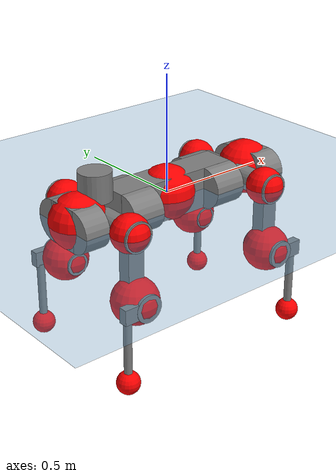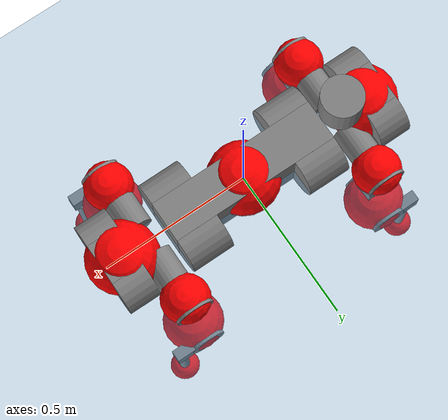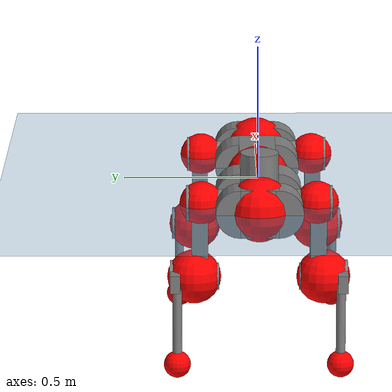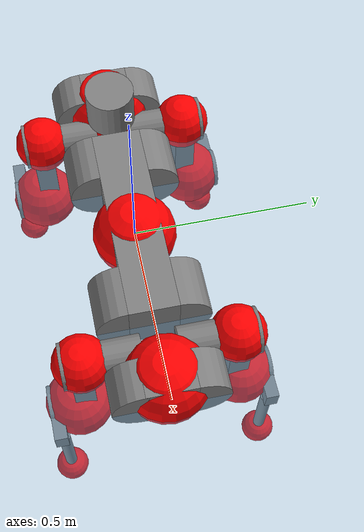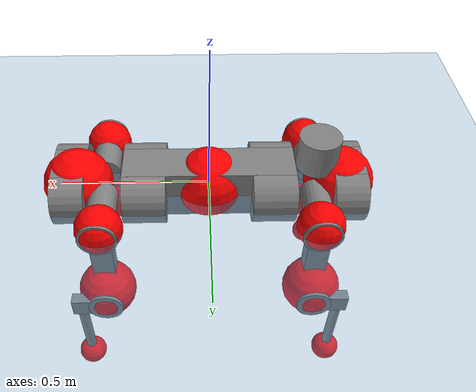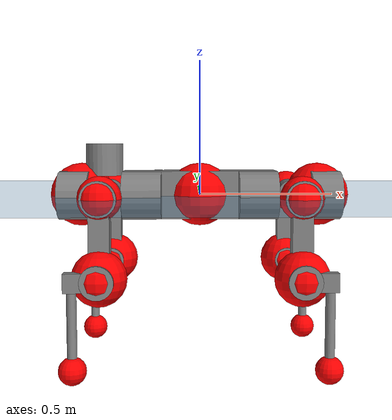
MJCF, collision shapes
<mujoco model="anymal_c">
  <compiler angle="radian" assetdir="assets" balanceinertia="true" inertiafromgeom="false"/>

  <option timestep="0.005" density="1.2" viscosity="2e-05"/>

  <size nkey="1"/>

  <visual>
    <quality shadowsize="8192"/>
    <map shadowclip="0.5"/>
  </visual>

  <default>
    <default class="/">
      <material specular="0" shininess="0.25"/>
      <geom contype="0" conaffinity="0" group="1" solref="-1000 -80"/>
      <site size="0.01 0.005 0.005" group="5"/>
      <general forcelimited="true" forcerange="-80 80" biastype="affine" gainprm="80" biasprm="0 -80 -2"/>
      <default class="anymal_c">
        <joint armature="0.01" damping="0.01" frictionloss="0.1"/>
        <default class="visual">
          <geom type="mesh" group="2"/>
          <default class="visual_zflip"/>
        </default>
        <default class="collision">
          <geom type="cylinder" group="3"/>
          <default class="foot">
            <geom size="0.03 0 0" type="sphere" condim="6" priority="1" friction="0.8 0.02 0.01" solimp="0.015 1 0.03"/>
          </default>
        </default>
      </default>
      <default class="reward_collision_sphere">
        <geom group="5" rgba="1 0 0 1"/>
      </default>
    </default>
  </default>

  <asset>
    <texture type="skybox" colorspace="auto" name="//unnamed_texture_0" builtin="gradient" rgb1="0.95 0.95 0.95" rgb2="0.95 0.95 0.95" width="100" height="600"/>
    <texture type="2d" colorspace="auto" name="texplane" builtin="checker" rgb1="0.345 0.575 0.748" rgb2="0.345 0.575 0.748" markrgb="1 1 1" width="512" height="512"/>
    <texture type="2d" colorspace="linear" name="base" file="base.png"/>
    <texture type="2d" colorspace="linear" name="top_shell" file="top_shell.png"/>
    <texture type="2d" colorspace="linear" name="bottom_shell" file="bottom_shell.png"/>
    <texture type="2d" colorspace="linear" name="remote" file="remote.png"/>
    <texture type="2d" colorspace="linear" name="hatch" file="hatch.png"/>
    <texture type="2d" colorspace="linear" name="handle" file="handle.png"/>
    <texture type="2d" colorspace="linear" name="face" file="face.png"/>
    <texture type="2d" colorspace="linear" name="battery" file="battery.png"/>
    <texture type="2d" colorspace="linear" name="lidar_cage" file="lidar_cage.png"/>
    <texture type="2d" colorspace="linear" name="depth_camera" file="depth_camera.png"/>
    <texture type="2d" colorspace="linear" name="wide_angle_camera" file="wide_angle_camera.png"/>
    <texture type="2d" colorspace="linear" name="lidar" file="lidar.png"/>
    <texture type="2d" colorspace="linear" name="drive" file="drive.png"/>
    <texture type="2d" colorspace="linear" name="hip_l" file="hip_l.png"/>
    <texture type="2d" colorspace="linear" name="shank_l" file="shank_l.png"/>
    <texture type="2d" colorspace="linear" name="foot" file="foot.png"/>
    <texture type="2d" colorspace="linear" name="thigh" file="thigh.png"/>
    <texture type="2d" colorspace="linear" name="shank_r" file="shank_r.png"/>
    <texture type="2d" colorspace="linear" name="hip_r" file="hip_r.png"/>
    <material name="MatPlane" class="/" texture="texplane" texuniform="true" texrepeat="2 2" specular="0.9" shininess="0.5"/>
    <material name="black_plastic" class="/" rgba="0.007 0.007 0.007 1"/>
    <material name="green" class="/" rgba="0.052 0.178 0.033 1"/>
    <material name="red" class="/" rgba="0.178 0.006 0.005 1"/>
    <material name="yellow" class="/" rgba="0.178 0.119 0.006 1"/>
    <material name="lwl" class="/" rgba="0.8 0.8 0.8 1"/>
    <material name="base" class="/" texture="base"/>
    <material name="top_shell" class="/" texture="top_shell"/>
    <material name="bottom_shell" class="/" texture="bottom_shell"/>
    <material name="hip_l" class="/" texture="hip_l"/>
    <material name="thigh" class="/" texture="thigh"/>
    <material name="shank_l" class="/" texture="shank_l"/>
    <material name="foot" class="/" texture="foot"/>
    <material name="hip_r" class="/" texture="hip_r"/>
    <material name="shank" class="/" texture="shank_r"/>
    <material name="hatch" class="/" texture="hatch"/>
    <material name="remote" class="/" texture="remote"/>
    <material name="handle" class="/" texture="handle"/>
    <material name="face" class="/" texture="face"/>
    <material name="depth_camera" class="/" texture="depth_camera"/>
    <material name="wide_angle_camera" class="/" texture="wide_angle_camera"/>
    <material name="battery" class="/" texture="battery"/>
    <material name="lidar_cage" class="/" texture="lidar_cage"/>
    <material name="lidar" class="/" texture="lidar"/>
    <material name="drive" class="/" texture="drive"/>
    <mesh name="base_0" class="/" file="base_0.obj"/>
    <mesh name="base_1" class="/" file="base_1.obj"/>
    <mesh name="base_2" class="/" file="base_2.obj"/>
    <mesh name="base_3" class="/" file="base_3.obj"/>
    <mesh name="base_4" class="/" file="base_4.obj"/>
    <mesh name="base_5" class="/" file="base_5.obj"/>
    <mesh name="top_shell" class="/" file="top_shell.obj"/>
    <mesh name="bottom_shell" class="/" file="bottom_shell.obj"/>
    <mesh name="remote" class="/" file="remote.obj"/>
    <mesh name="handle" class="/" file="handle.obj"/>
    <mesh name="face" class="/" file="face.obj"/>
    <mesh name="wide_angle_camera" class="/" file="wide_angle_camera.obj"/>
    <mesh name="depth_camera" class="/" file="depth_camera.obj"/>
    <mesh name="battery" class="/" file="battery.obj"/>
    <mesh name="lidar_cage" class="/" file="lidar_cage.obj"/>
    <mesh name="lidar" class="/" file="lidar.obj"/>
    <mesh name="drive" class="/" file="drive.obj"/>
    <mesh name="hip_l" class="/" file="hip_l.obj"/>
    <mesh name="thigh" class="/" file="thigh.obj"/>
    <mesh name="shank_l" class="/" file="shank_l.obj"/>
    <mesh name="foot" class="/" file="foot.obj"/>
    <mesh name="hip_r" class="/" file="hip_r.obj"/>
    <mesh name="hatch" class="/" file="hatch.obj"/>
    <mesh name="shank_r" class="/" file="shank_r.obj"/>
  </asset>

  <worldbody>
    <geom name="floor" class="/" size="100 100 0.125" type="plane" group="0" material="MatPlane"/>
    <light name="toplight_shadow" class="/" pos="0 0 5" dir="0.0990148 0.0990148 -0.990148" type="directional" ambient="0.04 0.04 0.04" diffuse="0.55 0.55 0.55" specular="0.12 0.12 0.12"/>
    <light name="toplight_fill" class="/" pos="0 0 5" dir="0.0990148 0.0990148 -0.990148" type="directional" castshadow="false" ambient="0.04 0.04 0.04" diffuse="0.3 0.3 0.3" specular="0.08 0.08 0.08"/>
    <body name="trunk" childclass="anymal_c" pos="-0.000213779 -3.36584e-05 0.000838992" quat="1 -4.5801e-06 1.22554e-05 1.32175e-05">
      <inertial pos="0.00285729 -2.39657e-06 0.0481698" quat="0.500885 0.499102 0.500279 0.499733" mass="17.7895" diaginertia="0.581169 0.599665 0.18929"/>
      <joint name="//unnamed_joint_0" type="free" armature="0" damping="0" frictionloss="0"/>
      <geom name="//unnamed_geom_1" class="visual" material="green" mesh="base_0"/>
      <geom name="//unnamed_geom_2" class="visual" material="yellow" mesh="base_1"/>
      <geom name="//unnamed_geom_3" class="visual" material="red" mesh="base_2"/>
      <geom name="//unnamed_geom_4" class="visual" material="black_plastic" mesh="base_3"/>
      <geom name="//unnamed_geom_5" class="visual" material="lwl" mesh="base_4"/>
      <geom name="//unnamed_geom_6" class="visual" material="base" mesh="base_5"/>
      <geom name="trunk_1" class="collision" size="0.285726 0.0689683 0.0886735" type="box"/>
      <geom name="trunk_2" class="collision" size="0.0886735 0.0714315" pos="0.213949 0.0696588 0" quat="0.707107 0 0.707107 0"/>
      <geom name="trunk_3" class="collision" size="0.0886735 0.0714315" pos="-0.213949 0.0696588 0" quat="0.707107 0 0.707107 0"/>
      <geom name="trunk_4" class="collision" size="0.0886735 0.0714315" pos="0.213949 -0.0696588 0" quat="0.707107 0 0.707107 0"/>
      <geom name="trunk_5" class="collision" size="0.0886735 0.0714315" pos="-0.213949 -0.0696588 0" quat="0.707107 0 0.707107 0"/>
      <geom name="//unnamed_geom_12" class="visual" material="top_shell" mesh="top_shell"/>
      <geom name="//unnamed_geom_13" class="visual" material="bottom_shell" mesh="bottom_shell"/>
      <geom name="//unnamed_geom_14" class="visual" material="remote" mesh="remote"/>
      <geom name="//unnamed_geom_15" class="visual" material="handle" mesh="handle"/>
      <geom name="//unnamed_geom_16" class="visual" pos="0.407733 0 0" quat="1 0 0 0" material="face" mesh="face"/>
      <geom name="trunk_6" class="collision" size="0.0541894 0.0689683 0.0886735" pos="0.461835 0 0" type="box"/>
      <geom name="//unnamed_geom_18" class="collision" size="0.0886735 0.0541894" pos="0.461835 0.0696588 0" quat="0.707107 0 0.707107 0"/>
      <geom name="//unnamed_geom_19" class="collision" size="0.0886735 0.0541894" pos="0.461835 -0.0696588 0" quat="0.707107 0 0.707107 0"/>
      <geom name="//unnamed_geom_20" class="visual" pos="0.454113 0 -0.0284772" quat="0.965926 0 0.258819 0" material="depth_camera" mesh="depth_camera"/>
      <geom name="//unnamed_geom_21" class="visual" pos="0.504624 0 0.0146255" material="wide_angle_camera" mesh="wide_angle_camera"/>
      <geom name="//unnamed_geom_22" class="visual_zflip" pos="-0.407733 0 0" quat="0 0 0 1" material="face" mesh="face"/>
      <geom name="trunk_7" class="collision" size="0.0541894 0.0689683 0.0886735" pos="-0.461835 0 0" quat="0 0 0 1" type="box"/>
      <geom name="//unnamed_geom_24" class="collision" size="0.0886735 0.0541894" pos="-0.461835 -0.0696588 0" quat="0 -0.707107 0 0.707107"/>
      <geom name="//unnamed_geom_25" class="collision" size="0.0886735 0.0541894" pos="-0.461835 0.0696588 0" quat="0 -0.707107 0 0.707107"/>
      <geom name="//unnamed_geom_26" class="visual" pos="-0.454113 0 -0.0284772" quat="0 -0.258819 0 0.965926" material="depth_camera" mesh="depth_camera"/>
      <geom name="//unnamed_geom_27" class="visual_zflip" pos="-0.504624 0 0.0146255" quat="0 0 0 1" material="wide_angle_camera" mesh="wide_angle_camera"/>
      <geom name="//unnamed_geom_28" class="visual" material="battery" mesh="battery"/>
      <geom name="//unnamed_geom_29" class="visual" pos="0 0.0762373 0.0284323" quat="0.683013 -0.183013 0.183013 0.683013" material="depth_camera" mesh="depth_camera"/>
      <geom name="//unnamed_geom_30" class="visual" pos="0 -0.0762373 0.0284323" quat="0.683013 0.183013 0.183013 -0.683013" material="depth_camera" mesh="depth_camera"/>
      <geom name="//unnamed_geom_31" class="visual" pos="-0.358057 0 0.0718085" quat="1 0 0 0" material="lidar_cage" mesh="lidar_cage"/>
      <geom name="trunk_8" class="collision" size="0.0689683 0.0591157" pos="-0.358057 0 0.130428"/>
      <geom name="//unnamed_geom_33" class="visual" pos="-0.358057 4.49904e-06 0.138927" quat="0.707107 0 0 -0.707107" material="lidar" mesh="lidar"/>
      <geom name="//unnamed_geom_34" class="visual" pos="0.295004 0.103487 3.12905e-10" quat="0.258819 0.965926 0 0" material="drive" mesh="drive"/>
      <geom name="//unnamed_geom_35" class="visual" pos="0.295004 -0.103487 -3.12905e-10" quat="0.258819 -0.965926 0 0" material="drive" mesh="drive"/>
      <geom name="//unnamed_geom_36" class="visual" pos="-0.295004 0.103487 -3.12905e-10" quat="0 0 0.965926 -0.258819" material="drive" mesh="drive"/>
      <geom name="//unnamed_geom_37" class="visual" pos="-0.295004 -0.103487 3.12905e-10" quat="0 0 -0.965926 -0.258819" material="drive" mesh="drive"/>
      <geom name="//unnamed_geom_38" class="visual" pos="0.114106 0 0.07132" quat="1 0 0 0" material="hatch" mesh="hatch"/>
      <geom name="//unnamed_geom_39" class="reward_collision_sphere" size="0.118231"/>
      <geom name="//unnamed_geom_40" class="reward_collision_sphere" size="0.118231" pos="0.442653 0 0"/>
      <geom name="//unnamed_geom_41" class="reward_collision_sphere" size="0.118231" pos="-0.442653 0 0"/>
      <site name="imu" pos="0.241343 0.00731724 0.0445598" size="0.00985261"/>
      <camera name="track" pos="0 -1.99025 0" quat="0.707107 0.707107 0 0" mode="trackcom"/>
      <camera name="ego_camera" pos="0.442653 0 -0.0390794" quat="-0.5 -0.5 0.5 0.5"/>
      <body name="LF_HIP" pos="0.295623 0.103379 -0.000276258" quat="0.258491 0.966014 -8.11461e-05 0.000189704">
        <inertial pos="0.0557662 -0.0142365 -0.00766291" quat="-0.127681 0.712243 -0.137483 0.676391" mass="2.66375" diaginertia="0.00539398 0.00480028 0.00294047"/>
        <joint name="LF_HAA" pos="0 0 0" axis="0.999999 -0.000795887 0.000949496" range="-0.713164 0.474434" armature="0.0100372" damping="0.00550499" frictionloss="0.096276"/>
        <geom name="//unnamed_geom_42" class="visual" pos="0 1.84068e-05 -3.0233e-06" quat="0.258819 -0.965926 0 0" material="hip_l" mesh="hip_l"/>
        <geom name="//unnamed_geom_43" class="visual" pos="0.058922 -0.0715409 -0.04117" quat="0.183013 -0.683013 0.683013 0.183013" material="drive" mesh="drive"/>
        <geom name="//unnamed_geom_44" class="collision" size="0.0492631 0.0689683" pos="0.058922 -0.0119015 -0.00674609" quat="-0.353553 -0.612372 0.612372 -0.353553"/>
        <body name="LF_THIGH" pos="0.0592828 -0.0733565 -0.0416965" quat="0.183018 -0.682888 0.683151 0.182954">
          <inertial pos="0.0299115 -1.20338e-05 -0.239942" quat="0.993004 -0.00582149 -0.0822062 0.0845687" mass="2.89263" diaginertia="0.0277233 0.0290476 0.00369068"/>
          <joint name="LF_HFE" pos="0 0 0" axis="0.999999 0.00145404 0.000199946" stiffness="0.00111348" range="-3.14999 3.14807" armature="0.0100279" damping="0.00808599" frictionloss="0.0992445"/>
          <geom name="//unnamed_geom_45" class="visual" pos="-0.000227843 -3.59027e-07 0" quat="0.707107 0 0 -0.707107" material="thigh" mesh="thigh"/>
          <geom name="//unnamed_geom_46" class="collision" size="0.064042 0.0394105" pos="0.0393469 0 0" quat="0.5 0.5 -0.5 -0.5"/>
          <geom name="//unnamed_geom_47" class="collision" size="0.0369473 0.0295578 0.139231" pos="0.0295102 0 -0.138062" quat="0.707107 0 0 -0.707107" type="box"/>
          <geom name="//unnamed_geom_48" class="visual" pos="0.0986625 0 -0.278441" quat="1 0 0 0" material="drive" mesh="drive"/>
          <geom name="//unnamed_geom_49" class="collision" size="0.0492631 0.0689683" pos="0.0298053 0 -0.278441" quat="0.707107 0 0.707107 0"/>
          <geom name="//unnamed_geom_50" class="reward_collision_sphere" size="0.0788209" pos="0.0245918 0 0"/>
          <body name="LF_SHANK" pos="0.0979223 0.000298912 -0.278971" quat="1 -4.87463e-05 4.37293e-05 -0.000191375">
            <inertial pos="0.00487395 -0.0609395 -0.0793055" quat="0.992715 -0.117477 -0.000696965 -0.0267417" mass="0.569875" diaginertia="0.00945997 0.00903328 0.00100031"/>
            <joint name="LF_KFE" pos="0 0 0" axis="1 -7.04558e-05 0.000293761" range="-3.12307 3.13655" armature="0.00942939" damping="0.00879818" frictionloss="0.0940823"/>
            <geom name="//unnamed_geom_51" class="visual" pos="-7.42945e-05 -0.000396142 0" quat="0.707107 0 0 -0.707107" material="shank_l" mesh="shank_l"/>
            <geom name="LF_kfe_act" class="collision" size="0.0591157 0.0197052" pos="0.0196735 0 0" quat="0.5 0.5 -0.5 -0.5"/>
            <geom name="//unnamed_geom_53" class="collision" size="0.0566515 0.0332526 0.01872" pos="0.0196735 -0.0572187 0" quat="0.5 0.5 -0.5 -0.5" type="box"/>
            <geom name="//unnamed_geom_54" class="visual" pos="0.012837 -0.0876489 -0.330192" quat="0.382683 0 0 -0.92388" material="foot" mesh="foot"/>
            <geom name="LF_calf" class="collision" size="0.0172421 0.13917" pos="0.0128369 -0.0875213 -0.165096" quat="0.707107 0 0 -0.707107"/>
            <geom name="LF_foot" class="foot" size="0.0314391" pos="0.0128369 -0.0875213 -0.30821" quat="0.707107 0 0 -0.707107"/>
            <geom name="//unnamed_geom_57" class="reward_collision_sphere" size="0.0985261" pos="-0.0491837 0 0"/>
            <geom name="//unnamed_geom_58" class="reward_collision_sphere" size="0.0492631" pos="0.0128369 -0.0875213 -0.30821"/>
            <site name="LF_foot" class="foot" pos="0.0128369 -0.0875213 -0.30821" quat="0.707107 0 0 -0.707107" size="0.00985261"/>
          </body>
        </body>
      </body>
      <body name="RF_HIP" pos="0.296348 -0.104096 0.000175577" quat="0.258839 -0.965921 -1.63407e-05 7.85461e-06">
        <inertial pos="0.0556964 0.0156869 -0.00841708" quat="0.135079 0.678647 0.127235 0.710636" mass="2.61512" diaginertia="0.00536864 0.00469596 0.00289708"/>
        <joint name="RF_HAA" pos="0 0 0" axis="0.999999 6.69407e-05 0.00103052" range="-0.494813 0.727468" armature="0.009983" damping="0.00919984" frictionloss="0.0989148"/>
        <geom name="//unnamed_geom_59" class="visual" pos="0 -1.84067e-05 -3.02329e-06" quat="0.258819 0.965926 0 0" material="hip_r" mesh="hip_r"/>
        <geom name="//unnamed_geom_60" class="visual" pos="0.058922 0.0715409 -0.04117" quat="0.183013 0.683013 0.683013 -0.183013" material="drive" mesh="drive"/>
        <geom name="//unnamed_geom_61" class="collision" size="0.0492631 0.0689683" pos="0.058922 0.0119015 -0.00674609" quat="-0.353553 0.612372 0.612372 0.353553"/>
        <body name="RF_THIGH" pos="0.0595867 0.0725188 -0.0407242" quat="0.183114 0.682926 0.683084 -0.182971">
          <inertial pos="0.0303177 0.000285144 -0.239689" quat="0.992651 -0.00461178 -0.0810698 0.0897239" mass="2.94977" diaginertia="0.0280222 0.0290759 0.0037261"/>
          <joint name="RF_HFE" pos="0 0 0" axis="1 -0.000204095 -0.000807496" stiffness="0.00609203" range="-3.1294 3.12103" armature="0.0099087" damping="0.0105913" frictionloss="0.103639"/>
          <geom name="//unnamed_geom_62" class="visual" pos="-0.000227843 -3.59027e-07 0" quat="0.707107 0 0 -0.707107" material="thigh" mesh="thigh"/>
          <geom name="//unnamed_geom_63" class="collision" size="0.064042 0.0394105" pos="0.0393469 0 0" quat="0.5 0.5 0.5 0.5"/>
          <geom name="//unnamed_geom_64" class="collision" size="0.0369473 0.0295578 0.139231" pos="0.0295102 0 -0.138062" quat="0.707107 0 0 0.707107" type="box"/>
          <geom name="//unnamed_geom_65" class="visual" pos="0.0986625 0 -0.278441" quat="1 0 0 0" material="drive" mesh="drive"/>
          <geom name="//unnamed_geom_66" class="collision" size="0.0492631 0.0689683" pos="0.0298053 0 -0.278441" quat="0.707107 0 0.707107 0"/>
          <geom name="//unnamed_geom_67" class="reward_collision_sphere" size="0.0788209" pos="0.0245918 0 0"/>
          <body name="RF_SHANK" pos="0.0985807 -0.000167377 -0.278738" quat="1 -0.000134556 6.08655e-05 -4.68948e-05">
            <inertial pos="0.0054755 0.0612602 -0.0783972" quat="0.993111 0.113509 -0.000589688 0.0290813" mass="0.559895" diaginertia="0.00928182 0.0090632 0.000991315"/>
            <joint name="RF_KFE" pos="0 0 0" axis="1 0.000634837 -0.000313108" range="-3.11972 3.1191" armature="0.00979284" damping="0.00983918" frictionloss="0.0963037"/>
            <geom name="//unnamed_geom_68" class="visual" pos="-7.42941e-05 0.000396141 0" quat="0.707107 0 0 0.707107" material="shank" mesh="shank_r"/>
            <geom name="RF_kfe_act" class="collision" size="0.0591157 0.0197052" pos="0.0196735 0 0" quat="0.5 0.5 0.5 0.5"/>
            <geom name="//unnamed_geom_70" class="collision" size="0.0566515 0.0332526 0.01872" pos="0.0196735 0.0572187 0" quat="0.5 0.5 0.5 0.5" type="box"/>
            <geom name="//unnamed_geom_71" class="visual" pos="0.0128369 0.0876489 -0.330192" quat="0.382683 0 0 0.92388" material="foot" mesh="foot"/>
            <geom name="RF_calf" class="collision" size="0.0172421 0.13917" pos="0.0128369 0.0875213 -0.165096" quat="0.707107 0 0 0.707107"/>
            <geom name="RF_foot" class="foot" size="0.0283143" pos="0.0128369 0.0875213 -0.30821" quat="0.707107 0 0 0.707107"/>
            <geom name="//unnamed_geom_74" class="reward_collision_sphere" size="0.0985261" pos="-0.0491837 0 0"/>
            <geom name="//unnamed_geom_75" class="reward_collision_sphere" size="0.0492631" pos="0.0128369 0.0875213 -0.30821"/>
            <site name="RF_foot" class="foot" pos="0.0128369 0.0875213 -0.30821" quat="0.707107 0 0 0.707107" size="0.00985261"/>
          </body>
        </body>
      </body>
      <body name="LH_HIP" pos="-0.294785 0.103351 -3.30642e-05" quat="0.000106681 -0.000161988 0.965929 -0.258808">
        <inertial pos="0.055321 0.0150633 -0.00844662" quat="0.135257 0.678329 0.123801 0.711511" mass="2.64542" diaginertia="0.00541716 0.00484966 0.00294481"/>
        <joint name="LH_HAA" pos="0 0 0" axis="1 0.000580702 -0.000616305" range="-0.49543 0.702469" armature="0.0098604" damping="0.0120349" frictionloss="0.0995172"/>
        <geom name="//unnamed_geom_76" class="visual" pos="0 -1.84067e-05 -3.02329e-06" quat="-0.258819 -0.965926 0 0" material="hip_r" mesh="hip_r"/>
        <geom name="//unnamed_geom_77" class="visual" pos="0.058922 0.0715409 -0.04117" quat="0.183013 0.683013 0.683013 -0.183013" material="drive" mesh="drive"/>
        <geom name="//unnamed_geom_78" class="collision" size="0.0492631 0.0689683" pos="0.058922 0.0119015 -0.00674609" quat="-0.353553 0.612372 0.612372 0.353553"/>
        <body name="LH_THIGH" pos="0.0591502 0.0718513 -0.0410645" quat="0.183002 0.683058 0.682927 -0.183173">
          <inertial pos="0.0303812 -0.000602638 -0.240193" quat="0.992624 -0.00552893 -0.081253 0.0898022" mass="2.93457" diaginertia="0.0278646 0.0294976 0.00373528"/>
          <joint name="LH_HFE" pos="0 0 0" axis="1 2.32869e-06 2.8775e-06" range="-3.1432 3.14096" armature="0.0102155" damping="0.0119103" frictionloss="0.0982993"/>
          <geom name="//unnamed_geom_79" class="visual" pos="-0.000227843 -3.59027e-07 0" quat="0.707107 0 0 -0.707107" material="thigh" mesh="thigh"/>
          <geom name="//unnamed_geom_80" class="collision" size="0.064042 0.0394105" pos="0.0393469 0 0" quat="0.5 0.5 -0.5 -0.5"/>
          <geom name="//unnamed_geom_81" class="collision" size="0.0369473 0.0295578 0.139231" pos="0.0295102 0 -0.138062" quat="0.707107 0 0 -0.707107" type="box"/>
          <geom name="//unnamed_geom_82" class="visual" pos="0.0986625 0 -0.278441" quat="1 0 0 0" material="drive" mesh="drive"/>
          <geom name="//unnamed_geom_83" class="collision" size="0.0492631 0.0689683" pos="0.0298053 0 -0.278441" quat="0.707107 0 0.707107 0"/>
          <geom name="//unnamed_geom_84" class="reward_collision_sphere" size="0.0788209" pos="0.0245918 0 0"/>
          <body name="LH_SHANK" pos="0.0999153 -0.000853748 -0.278623" quat="1 5.4984e-05 4.58052e-05 3.8271e-05">
            <inertial pos="0.00539931 0.060922 -0.0789001" quat="0.992945 0.114823 0.00143387 0.0295635" mass="0.562669" diaginertia="0.00931839 0.00901573 0.000986735"/>
            <joint name="LH_KFE" pos="0 0 0" axis="0.999999 0.00157801 0.000326687" range="-3.14831 3.14205" armature="0.0101692" damping="0.00809641" frictionloss="0.0941562"/>
            <geom name="//unnamed_geom_85" class="visual" pos="-7.42941e-05 0.000396141 0" quat="-0.707107 0 0 -0.707107" material="shank" mesh="shank_r"/>
            <geom name="LH_kfe_act" class="collision" size="0.0591157 0.0197052" pos="0.0196735 0 0" quat="0.5 0.5 -0.5 -0.5"/>
            <geom name="//unnamed_geom_87" class="collision" size="0.0566515 0.0332526 0.01872" pos="0.0196735 0.0572187 0" quat="0.5 0.5 -0.5 -0.5" type="box"/>
            <geom name="//unnamed_geom_88" class="visual" pos="0.0128369 0.0876489 -0.330192" quat="-0.382683 0 0 -0.92388" material="foot" mesh="foot"/>
            <geom name="LH_calf" class="collision" size="0.0172421 0.13917" pos="0.0128369 0.0875213 -0.165096" quat="0.707107 0 0 -0.707107"/>
            <geom name="LH_foot" class="foot" size="0.030803" pos="0.0128369 0.0875213 -0.30821" quat="0.707107 0 0 -0.707107"/>
            <geom name="//unnamed_geom_91" class="reward_collision_sphere" size="0.0985261" pos="-0.0491837 0 0"/>
            <geom name="//unnamed_geom_92" class="reward_collision_sphere" size="0.0492631" pos="0.0128369 0.0875213 -0.30821"/>
            <site name="LH_foot" class="foot" pos="0.0128369 0.0875213 -0.30821" quat="0.707107 0 0 -0.707107" size="0.00985261"/>
          </body>
        </body>
      </body>
      <body name="RH_HIP" pos="-0.294924 -0.103666 0.000401359" quat="8.60314e-06 -5.46759e-05 -0.965923 -0.258831">
        <inertial pos="0.0555824 -0.0155269 -0.00855151" quat="-0.12839 0.710904 -0.134541 0.678255" mass="2.68592" diaginertia="0.00544315 0.00483917 0.00293829"/>
        <joint name="RH_HAA" pos="0 0 0" axis="1 -0.000981048 0.000166031" stiffness="0.00151512" range="-0.716897 0.504844" armature="0.00987397" damping="0.0138839" frictionloss="0.097823"/>
        <geom name="//unnamed_geom_93" class="visual" pos="0 1.84068e-05 -3.0233e-06" quat="-0.258819 0.965926 0 0" material="hip_l" mesh="hip_l"/>
        <geom name="//unnamed_geom_94" class="visual" pos="0.058922 -0.0715409 -0.04117" quat="-0.183013 0.683013 -0.683013 -0.183013" material="drive" mesh="drive"/>
        <geom name="//unnamed_geom_95" class="collision" size="0.0492631 0.0689683" pos="0.058922 -0.0119015 -0.00674609" quat="0.353553 0.612372 -0.612372 0.353553"/>
        <body name="RH_THIGH" pos="0.058481 -0.0715165 -0.0406455" quat="-0.183122 0.683027 -0.682996 -0.182912">
          <inertial pos="0.0296685 -0.00049606 -0.239462" quat="0.993144 -0.00545118 -0.0807124 0.0843866" mass="2.88515" diaginertia="0.0276529 0.0288084 0.00370591"/>
          <joint name="RH_HFE" pos="0 0 0" axis="1 0.000147336 0.000525444" stiffness="0.000620525" range="-3.14624 3.13995" armature="0.0100193" damping="0.00875383" frictionloss="0.0980838"/>
          <geom name="//unnamed_geom_96" class="visual" pos="-0.000227843 -3.59027e-07 0" quat="0.707107 0 0 -0.707107" material="thigh" mesh="thigh"/>
          <geom name="//unnamed_geom_97" class="collision" size="0.064042 0.0394105" pos="0.0393469 0 0" quat="0.5 0.5 0.5 0.5"/>
          <geom name="//unnamed_geom_98" class="collision" size="0.0369473 0.0295578 0.139231" pos="0.0295102 0 -0.138062" quat="0.707107 0 0 0.707107" type="box"/>
          <geom name="//unnamed_geom_99" class="visual" pos="0.0986625 0 -0.278441" quat="1 0 0 0" material="drive" mesh="drive"/>
          <geom name="//unnamed_geom_100" class="collision" size="0.0492631 0.0689683" pos="0.0298053 0 -0.278441" quat="0.707107 0 0.707107 0"/>
          <geom name="//unnamed_geom_101" class="reward_collision_sphere" size="0.0788209" pos="0.0245918 0 0"/>
          <body name="RH_SHANK" pos="0.0981544 -0.000423597 -0.278437" quat="1 0.000322452 0.000148781 5.69013e-05">
            <inertial pos="0.00566522 -0.0609057 -0.0791467" quat="0.992861 -0.116291 -0.00253182 -0.0263897" mass="0.560911" diaginertia="0.00942734 0.00893485 0.000990787"/>
            <joint name="RH_KFE" pos="0 0 0" axis="0.999965 -0.00838443 0.000717958" range="-3.13131 3.13292" armature="0.00961014" damping="0.00879272" frictionloss="0.0983693"/>
            <geom name="//unnamed_geom_102" class="visual" pos="-7.42945e-05 -0.000396142 0" quat="0.707107 0 0 -0.707107" material="shank_l" mesh="shank_l"/>
            <geom name="RH_kfe_act" class="collision" size="0.0591157 0.0197052" pos="0.0196735 0 0" quat="0.5 0.5 0.5 0.5"/>
            <geom name="//unnamed_geom_104" class="collision" size="0.0566515 0.0332526 0.01872" pos="0.0196735 -0.0572187 0" quat="0.5 0.5 0.5 0.5" type="box"/>
            <geom name="//unnamed_geom_105" class="visual" pos="0.012837 -0.0876489 -0.330192" quat="0.382683 0 0 -0.92388" material="foot" mesh="foot"/>
            <geom name="RH_calf" class="collision" size="0.0172421 0.13917" pos="0.0128369 -0.0875213 -0.165096" quat="0.707107 0 0 0.707107"/>
            <geom name="RH_foot" class="foot" size="0.0278433" pos="0.0128369 -0.0875213 -0.30821" quat="0.707107 0 0 0.707107"/>
            <geom name="//unnamed_geom_108" class="reward_collision_sphere" size="0.0985261" pos="-0.0491837 0 0"/>
            <geom name="//unnamed_geom_109" class="reward_collision_sphere" size="0.0492631" pos="0.0128369 -0.0875213 -0.30821"/>
            <site name="RH_foot" class="foot" pos="0.0128369 -0.0875213 -0.30821" quat="0.707107 0 0 0.707107" size="0.00985261"/>
          </body>
        </body>
      </body>
    </body>
  </worldbody>

  <contact>
    <pair class="/" geom1="floor" geom2="LF_foot" name="//unnamed_contact_0"/>
    <pair class="/" geom1="floor" geom2="RF_foot" name="//unnamed_contact_1"/>
    <pair class="/" geom1="floor" geom2="LH_foot" name="//unnamed_contact_2"/>
    <pair class="/" geom1="floor" geom2="RH_foot" name="//unnamed_contact_3"/>
  </contact>

  <actuator>
    <general name="LF_HAA" class="/" joint="LF_HAA" forcerange="-78.5988 78.5988" gainprm="81.7729" biasprm="0 -81.7729 -1.96448"/>
    <general name="LF_HFE" class="/" joint="LF_HFE" forcerange="-81.3136 81.3136" gainprm="81.7729" biasprm="0 -81.7729 -1.96448"/>
    <general name="LF_KFE" class="/" joint="LF_KFE" forcerange="-78.1567 78.1567" gainprm="81.7729" biasprm="0 -81.7729 -1.96448"/>
    <general name="RF_HAA" class="/" joint="RF_HAA" forcerange="-82.0101 82.0101" gainprm="81.7729" biasprm="0 -81.7729 -1.96448"/>
    <general name="RF_HFE" class="/" joint="RF_HFE" forcerange="-77.4405 77.4405" gainprm="81.7729" biasprm="0 -81.7729 -1.96448"/>
    <general name="RF_KFE" class="/" joint="RF_KFE" forcerange="-79.9855 79.9855" gainprm="81.7729" biasprm="0 -81.7729 -1.96448"/>
    <general name="LH_HAA" class="/" joint="LH_HAA" forcerange="-79.2085 79.2085" gainprm="81.7729" biasprm="0 -81.7729 -1.96448"/>
    <general name="LH_HFE" class="/" joint="LH_HFE" forcerange="-80.3184 80.3184" gainprm="81.7729" biasprm="0 -81.7729 -1.96448"/>
    <general name="LH_KFE" class="/" joint="LH_KFE" forcerange="-79.1245 79.1245" gainprm="81.7729" biasprm="0 -81.7729 -1.96448"/>
    <general name="RH_HAA" class="/" joint="RH_HAA" forcerange="-78.4217 78.4217" gainprm="81.7729" biasprm="0 -81.7729 -1.96448"/>
    <general name="RH_HFE" class="/" joint="RH_HFE" forcerange="-78.018 78.018" gainprm="81.7729" biasprm="0 -81.7729 -1.96448"/>
    <general name="RH_KFE" class="/" joint="RH_KFE" forcerange="-77.6557 77.6557" gainprm="81.7729" biasprm="0 -81.7729 -1.96448"/>
  </actuator>

  <sensor>
    <gyro site="imu" name="imu_angular_velocity"/>
    <velocimeter site="imu" name="imu_linear_velocity"/>
    <framelinvel objtype="site" objname="LF_foot" name="LF_foot_global_linear_velocity"/>
    <framelinvel objtype="site" objname="RF_foot" name="RF_foot_global_linear_velocity"/>
    <framelinvel objtype="site" objname="LH_foot" name="LH_foot_global_linear_velocity"/>
    <framelinvel objtype="site" objname="RH_foot" name="RH_foot_global_linear_velocity"/>
  </sensor>

  <keyframe>
    <key name="home" qpos="0 0 0.55 1 0 0 0 0 0.4 -0.8 0 -0.4 0.8 0 -0.4 0.8 0 0.4 -0.8"/>
  </keyframe>
</mujoco>
